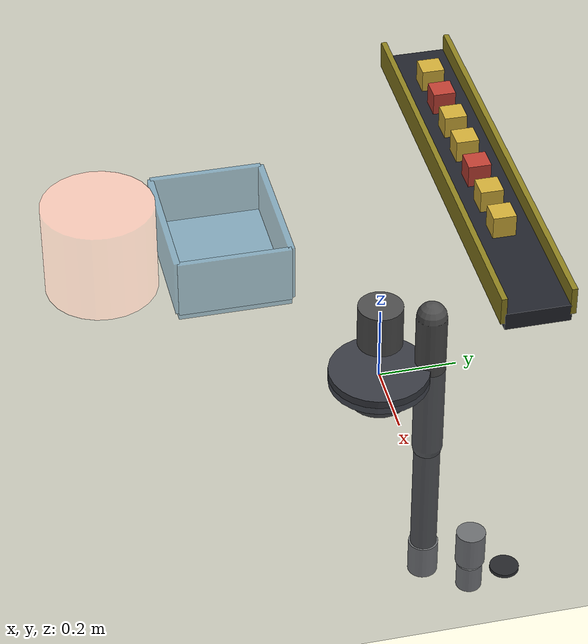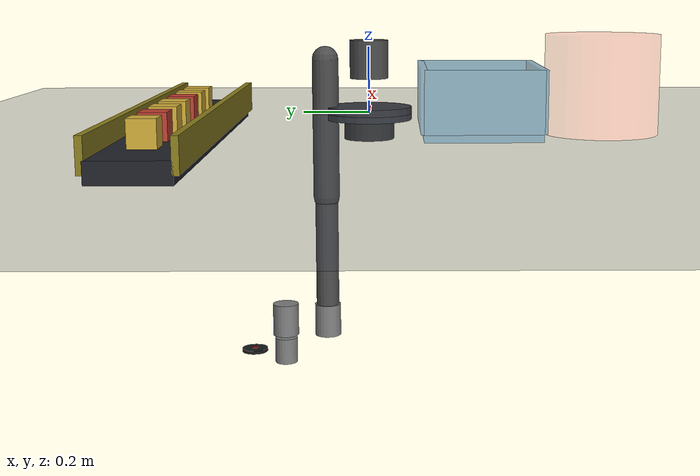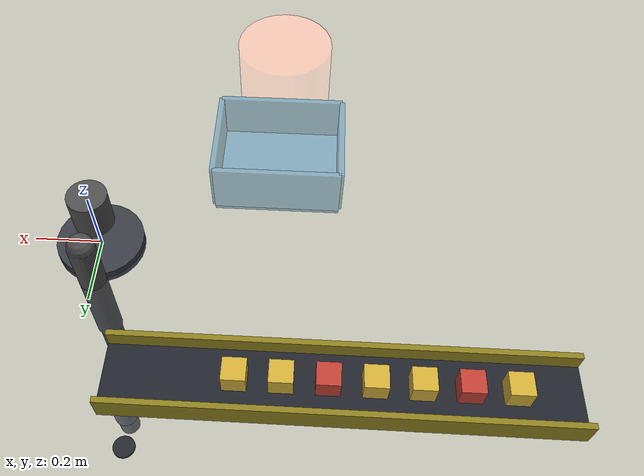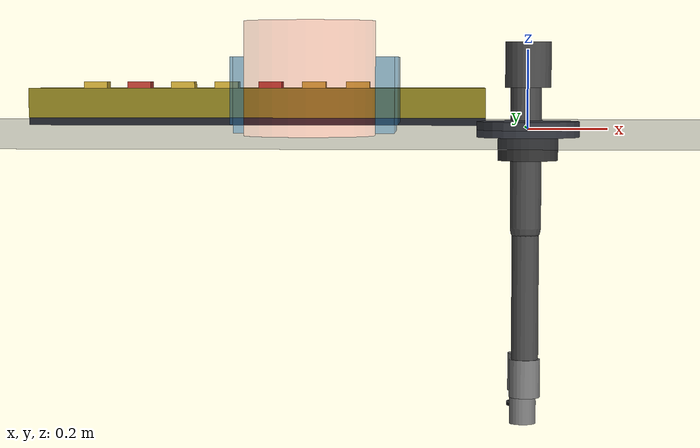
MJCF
<mujoco model="factory_cell_ur5e_xl">
  <compiler angle="radian" meshdir="assets" autolimits="true"/>
  <option integrator="implicitfast"/>

  <include file="ur5e.xml"/>

  <visual>
    <global offwidth="960" offheight="720"/>
    <headlight diffuse="0.55 0.55 0.55" ambient="0.4 0.4 0.4" specular="0.1 0.1 0.1"/>
    <quality shadowsize="4096"/>
    <map force="0.1" zfar="30"/>
  </visual>

  <asset>
    <texture name="grid" type="2d" builtin="checker" rgb1="0.26 0.28 0.32" rgb2="0.31 0.33 0.37"
             width="300" height="300"/>
    <material name="floor_mat" texture="grid" texrepeat="6 6" reflectance="0.15"/>
    <material name="belt_mat" rgba="0.13 0.14 0.17 1"/>
    <material name="belt_rail" rgba="0.55 0.5 0.12 1"/>
    <material name="bin_mat" rgba="0.15 0.42 0.62 0.55"/>
    <material name="safety_mat" rgba="0.85 0.1 0.1 0.22"/>
    <material name="part_good" rgba="0.82 0.68 0.22 1"/>
    <material name="part_defect" rgba="0.75 0.25 0.2 1"/>
    <material name="pedestal_mat" rgba="0.22 0.23 0.26 1"/>
  </asset>

  <worldbody>
    <light name="key" pos="1.0 -1.0 2.4" dir="-0.4 0.4 -1" diffuse="0.7 0.7 0.7"/>
    <light name="fill" pos="-1.2 1.2 2.0" dir="0.4 -0.4 -1" diffuse="0.3 0.3 0.3"/>
    <camera name="cell" pos="1.75 -1.35 1.25" xyaxes="0.69 0.72 0 -0.36 0.34 0.87"/>

    <geom name="floor" type="plane" size="4 4 0.1" material="floor_mat"/>

    <!-- robot mounting pedestal -->
    <geom name="pedestal" type="cylinder" pos="0 0 -0.001" size="0.13 0.02" material="pedestal_mat"/>

    <!-- lengthened conveyor belt (parts queue along this toward the pick point) -->
    <geom name="belt" type="box" pos="-0.72 0.449 0.025" size="0.62 0.09 0.025" material="belt_mat"/>
    <geom name="belt_rail_n" type="box" pos="-0.72 0.355 0.06" size="0.62 0.008 0.04" material="belt_rail"/>
    <geom name="belt_rail_f" type="box" pos="-0.72 0.543 0.06" size="0.62 0.008 0.04" material="belt_rail"/>

    <!-- larger, deeper drop bin at the place point (shifted toward the robot so it
         stays clear of the unchanged human keep-out zone) -->
    <geom name="bin_floor" type="box" pos="-0.52 -0.30 0.02" size="0.19 0.15 0.02" material="bin_mat"/>
    <geom name="bin_w1" type="box" pos="-0.52 -0.15 0.10" size="0.19 0.008 0.08" material="bin_mat"/>
    <geom name="bin_w2" type="box" pos="-0.52 -0.45 0.10" size="0.19 0.008 0.08" material="bin_mat"/>
    <geom name="bin_w3" type="box" pos="-0.33 -0.30 0.10" size="0.008 0.15 0.08" material="bin_mat"/>
    <geom name="bin_w4" type="box" pos="-0.71 -0.30 0.10" size="0.008 0.15 0.08" material="bin_mat"/>

    <!-- human safety keep-out zone (operator unloading the bin) — unchanged -->
    <geom name="safety_zone" type="cylinder" pos="-0.52 -0.62 0.13" size="0.15 0.13" material="safety_mat" contype="0" conaffinity="0"/>
    <site name="safety_center" pos="-0.52 -0.62 0.13" size="0.02" rgba="0.9 0 0 0.7"/>

    <!-- seven parts queued on the belt; part2 and part5 are genuinely defective -->
    <body name="part0" pos="-0.447 0.449 0.085"><freejoint name="part0_free"/><geom name="part0_geom" type="box" size="0.032 0.032 0.032" material="part_good" mass="0.2" friction="1 0.05 0.001"/></body>
    <body name="part1" pos="-0.567 0.449 0.085"><freejoint name="part1_free"/><geom name="part1_geom" type="box" size="0.032 0.032 0.032" material="part_good" mass="0.2" friction="1 0.05 0.001"/></body>
    <body name="part2" pos="-0.687 0.449 0.085"><freejoint name="part2_free"/><geom name="part2_geom" type="box" size="0.032 0.032 0.032" material="part_defect" mass="0.2" friction="1 0.05 0.001"/></body>
    <body name="part3" pos="-0.807 0.449 0.085"><freejoint name="part3_free"/><geom name="part3_geom" type="box" size="0.032 0.032 0.032" material="part_good" mass="0.2" friction="1 0.05 0.001"/></body>
    <body name="part4" pos="-0.927 0.449 0.085"><freejoint name="part4_free"/><geom name="part4_geom" type="box" size="0.032 0.032 0.032" material="part_good" mass="0.2" friction="1 0.05 0.001"/></body>
    <body name="part5" pos="-1.047 0.449 0.085"><freejoint name="part5_free"/><geom name="part5_geom" type="box" size="0.032 0.032 0.032" material="part_defect" mass="0.2" friction="1 0.05 0.001"/></body>
    <body name="part6" pos="-1.167 0.449 0.085"><freejoint name="part6_free"/><geom name="part6_geom" type="box" size="0.032 0.032 0.032" material="part_good" mass="0.2" friction="1 0.05 0.001"/></body>
  </worldbody>
</mujoco>

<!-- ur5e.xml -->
<mujoco model="ur5e">

  <compiler angle="radian" autolimits="true" eulerseq="xyz"/>

  <option timestep="0.002" gravity="0 0 -9.81" integrator="RK4">
    <flag contact="enable"/>
  </option>

  <default>
    <default class="ur5e">
      <joint limited="true" damping="1.0" armature="0.01" frictionloss="0.1"/>
      <geom contype="1" conaffinity="1" rgba="0.7 0.7 0.7 1" group="1"/>
    </default>
    <default class="visual">
      <geom contype="0" conaffinity="0" group="2" rgba="0.2 0.5 0.8 1"/>
    </default>
    <default class="collision">
      <geom contype="1" conaffinity="1" group="3" rgba="0.5 0.5 0.5 0"/>
    </default>
  </default>

  <!-- ── Kinematic chain ─────────────────────────────────────────────── -->
  <worldbody>

    <!-- Fixed base plate -->
    <body name="base" pos="0 0 0">
      <geom class="visual" name="base_visual" type="cylinder"
            size="0.076 0.04" pos="0 0 -0.04" rgba="0.2 0.2 0.2 1"/>
      <geom class="collision" name="base_col" type="cylinder"
            size="0.076 0.04" pos="0 0 -0.04"/>

      <!-- ── Joint 0: Shoulder Pan (rotate around z) ── -->
      <body name="shoulder_link" pos="0 0 0.1625">
        <inertial mass="3.7" pos="0 0 -0.02"
                  diaginertia="0.010267 0.010267 0.00666"/>
        <joint name="shoulder_pan_joint"  class="ur5e"
               axis="0 0 1" range="-6.2832 6.2832"/>
        <geom class="visual" name="shoulder_v" type="cylinder"
              size="0.058 0.058" pos="0 0 0" rgba="0.3 0.3 0.3 1"/>
        <geom class="collision" name="shoulder_c" type="cylinder"
              size="0.058 0.058"/>

        <!-- ── Joint 1: Shoulder Lift (rotate around y, aligned via euler) ── -->
        <body name="upper_arm_link" pos="0 0.1333 0" euler="0 0 -1.5708">
          <inertial mass="8.393" pos="0 0 0.2125"
                    diaginertia="0.22689 0.22689 0.01511"/>
          <joint name="shoulder_lift_joint" class="ur5e"
                 axis="0 1 0" range="-6.2832 6.2832"/>
          <!-- Upper arm extends 0.425 m along -z in this frame -->
          <geom class="visual" name="upper_arm_v" type="capsule"
                fromto="0 0 0 0 0 -0.425" size="0.04" rgba="0.3 0.3 0.3 1"/>
          <geom class="collision" name="upper_arm_c" type="capsule"
                fromto="0 0 0 0 0 -0.425" size="0.04"/>

          <!-- ── Joint 2: Elbow ── -->
          <body name="forearm_link" pos="0 0 -0.425">
            <inertial mass="2.275" pos="0 0 -0.196"
                      diaginertia="0.04944 0.04944 0.004095"/>
            <joint name="elbow_joint" class="ur5e"
                   axis="0 1 0" range="-3.1416 3.1416"/>
            <!-- Forearm extends 0.3922 m along -z -->
            <geom class="visual" name="forearm_v" type="capsule"
                  fromto="0 0 0 0 0 -0.3922" size="0.035" rgba="0.3 0.3 0.3 1"/>
            <geom class="collision" name="forearm_c" type="capsule"
                  fromto="0 0 0 0 0 -0.3922" size="0.035"/>

            <!-- ── Joint 3: Wrist 1 ── -->
            <body name="wrist_1_link" pos="0 0 -0.3922" euler="0 0 1.5708">
              <inertial mass="1.219" pos="0 0 0"
                        diaginertia="0.11117 0.11117 0.21942"/>
              <joint name="wrist_1_joint" class="ur5e"
                     axis="0 1 0" range="-6.2832 6.2832"/>
              <geom class="visual" name="wrist_1_v" type="cylinder"
                    size="0.04 0.05" rgba="0.5 0.5 0.5 1"/>
              <geom class="collision" name="wrist_1_c" type="cylinder"
                    size="0.04 0.05"/>

              <!-- ── Joint 4: Wrist 2 (rotate around z in this frame) ── -->
              <body name="wrist_2_link" pos="0 0.1333 0">
                <inertial mass="1.219" pos="0 0 0"
                          diaginertia="0.11117 0.11117 0.21942"/>
                <joint name="wrist_2_joint" class="ur5e"
                       axis="0 0 1" range="-6.2832 6.2832"/>
                <geom class="visual" name="wrist_2_v" type="cylinder"
                      size="0.04 0.05" rgba="0.5 0.5 0.5 1"/>
                <geom class="collision" name="wrist_2_c" type="cylinder"
                      size="0.04 0.05"/>

                <!-- ── Joint 5: Wrist 3 ── -->
                <body name="wrist_3_link" pos="0 0 -0.0997">
                  <inertial mass="0.1889" pos="0 0.0996 0"
                            diaginertia="0.01714 0.01714 0.03382"/>
                  <joint name="wrist_3_joint" class="ur5e"
                         axis="0 1 0" range="-6.2832 6.2832"/>
                  <geom class="visual" name="wrist_3_v" type="cylinder"
                        size="0.035 0.04" rgba="0.5 0.5 0.5 1"/>
                  <geom class="collision" name="wrist_3_c" type="cylinder"
                        size="0.035 0.04"/>

                  <!-- End-effector / flange -->
                  <body name="flange" pos="0 0.0996 0">
                    <geom class="visual" name="flange_v" type="cylinder"
                          size="0.04 0.005" rgba="0.1 0.1 0.1 1"/>
                    <!-- Tool Centre Point site -->
                    <site name="tcp" pos="0 0 0" size="0.01"
                          rgba="1 0 0 0.5" type="sphere"/>
                  </body>

                </body> <!-- wrist_3_link -->
              </body> <!-- wrist_2_link -->
            </body> <!-- wrist_1_link -->
          </body> <!-- forearm_link -->
        </body> <!-- upper_arm_link -->
      </body> <!-- shoulder_link -->
    </body> <!-- base -->

  </worldbody>

  <!-- ── Position actuators (kp = high stiffness to track position commands) ── -->
  <actuator>
    <position name="shoulder_pan"  joint="shoulder_pan_joint"
              kp="4000" ctrlrange="-6.2832 6.2832"/>
    <position name="shoulder_lift" joint="shoulder_lift_joint"
              kp="4000" ctrlrange="-6.2832 6.2832"/>
    <position name="elbow"         joint="elbow_joint"
              kp="2000" ctrlrange="-3.1416 3.1416"/>
    <position name="wrist_1"       joint="wrist_1_joint"
              kp="1500" ctrlrange="-6.2832 6.2832"/>
    <position name="wrist_2"       joint="wrist_2_joint"
              kp="1500" ctrlrange="-6.2832 6.2832"/>
    <position name="wrist_3"       joint="wrist_3_joint"
              kp="1000" ctrlrange="-6.2832 6.2832"/>
  </actuator>

</mujoco>
